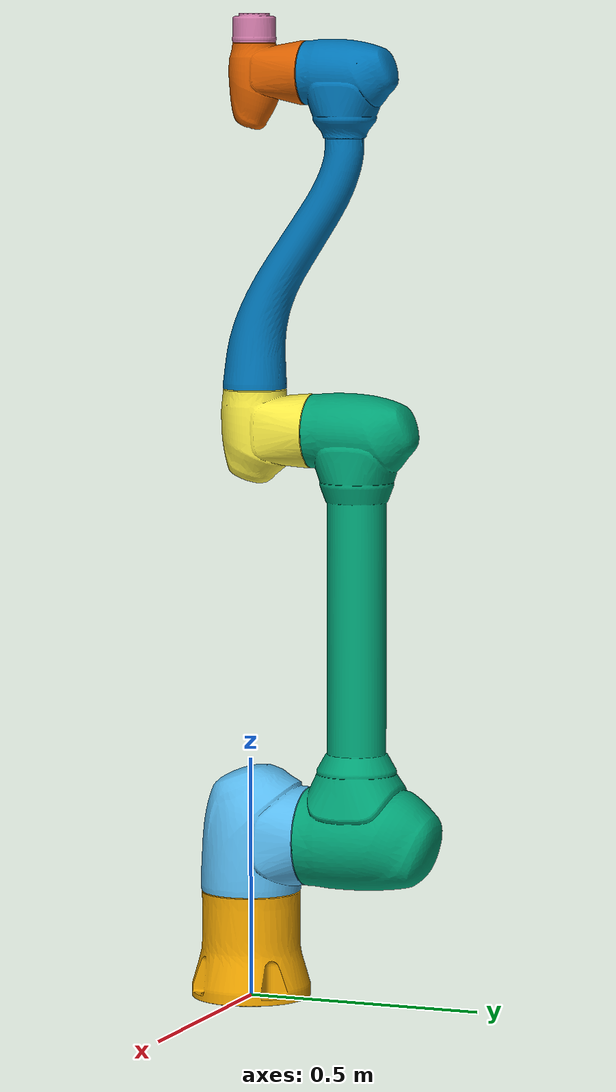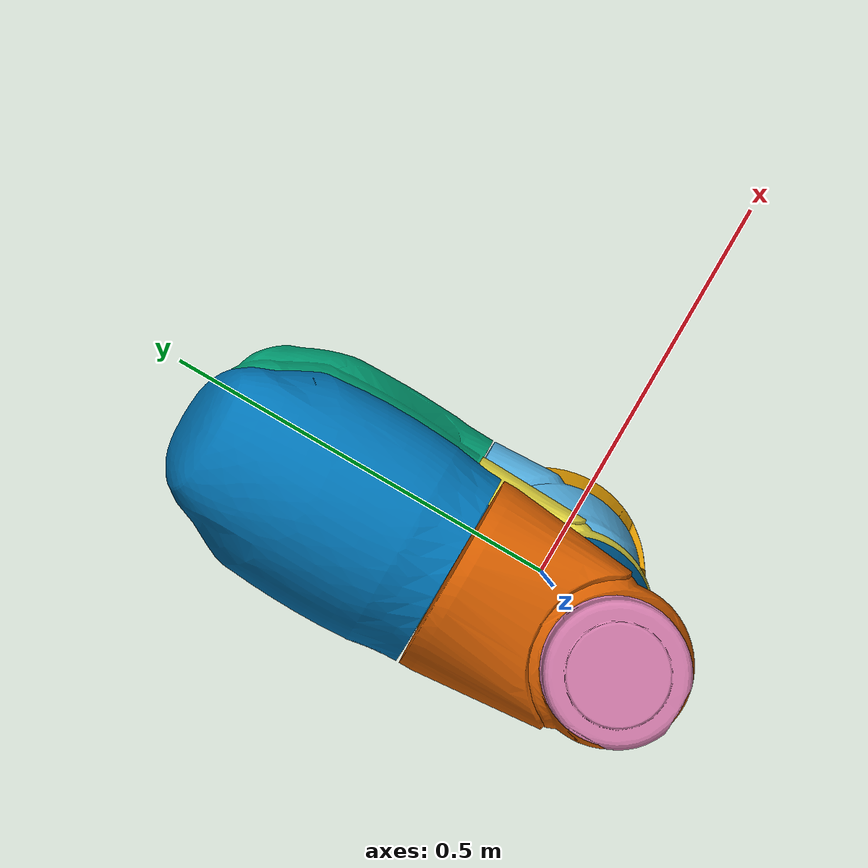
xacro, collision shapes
<?xml version="1.0"?>
<robot xmlns:xacro="http://www.ros.org/wiki/xacro" name="h2017" >

  <xacro:arg name="color"   default="blue"/>
  <xacro:arg name="gripper" default="none"/>

  <xacro:property name="cr" value="$(arg color)"/>
  <xacro:property name="gr" value="$(arg gripper)"/>

  <xacro:if value="${cr == 'white'}">
     <xacro:include filename="$(find doosan_lift_description)/urdf/macro.h2017.white.xacro" />
  </xacro:if>
  <xacro:if value="${cr == 'blue'}">
     <xacro:include filename="$(find doosan_lift_description)/urdf/macro.h2017.blue.xacro" />
  </xacro:if>
  <xacro:h2017/>

  <link name="world" />

  <!-- World fixed joint-->
  <joint name="world_fixed" type="fixed">
    <origin xyz="0 0 0" rpy="0 0 0"/>
    <parent link="world"/>
    <child link="base_0"/>
  </joint>

</robot>

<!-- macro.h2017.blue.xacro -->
<robot name="h2017" xmlns:xacro="http://www.ros.org/wiki/xacro">
	<xacro:include filename="$(find dootion_description)/urdf/macro.gazebo.xacro" />
	<xacro:include filename="$(find dootion_description)/urdf/macro.transmission.xacro" />
	<xacro:include filename="$(find dootion_description)/urdf/macro.materials.xacro" />
	<xacro:macro name="h2017">
		<xacro:dsr_materials />
		<link name="base_0">
			<inertial>
				<mass value="8.537"/>
				<origin xyz="1.8e-05   -0.002377    0.095608"/>
				<inertia ixx="0.079499" ixy="2.9382e-05" ixz="1.7529e-05" iyy="0.076993"
					iyz="-0.0009938"
					izz="0.067833"/>
			</inertial>
			<visual>
				<origin rpy="0 0 0" xyz="0 0 0" />
				<geometry>
					<mesh filename="package://dootion_description/meshes/h2017_blue/H2017_0_0.dae" scale="0.001 0.001 0.001" />
				</geometry>
			</visual>
			<collision>
				<origin rpy="0 0 0" xyz="0 0 0" />
				<geometry>
					<mesh filename="package://dootion_description/meshes/doosan_collision/H2017_0_0.stl" scale="1 1 1" />
				</geometry>
			</collision>
		</link>
		<!-- joint 1 -->
		<joint name="joint1" type="revolute">
			<parent link="base_0" />
			<child link="link1" />
			<origin rpy="0 0 0" xyz="0 0 0.3443" />
			<axis xyz="0 0 1" />
			<limit effort="372" lower="-6.2832" upper="6.2832" velocity="1.7453"/>
			<dynamics friction="0" />
		</joint>
		<link name="link1">
			<inertial>
				<mass value="20.253"/>
				<origin xyz="-5e-05     0.11854   -0.059979"/>
				<inertia ixx="0.5323" ixy="-6.2817e-05" ixz="-7.5664e-06" iyy="0.2807" iyz="-0.14899"
					izz="0.34857"/>
			</inertial>
			<visual>
				<origin rpy="0 0 0" xyz="0 0 0" />
				<geometry>
					<mesh filename="package://dootion_description/meshes/h2017_blue/H2017_1_0.dae" scale="0.001 0.001 0.001" />
				</geometry>
			</visual>
            <collision>
                <geometry>
					<mesh filename="package://dootion_description/meshes/doosan_collision/H2017_1_0.stl" scale="1 1 1" />
                </geometry>
            </collision>
		</link>
		<!-- joint2 -->
		<joint name="joint2" type="revolute">
			<parent link="link1" />
			<child link="link2" />
			<origin rpy="0 -1.571 -1.571" xyz="0 0.0099 0" />
			<axis xyz="0 0 1" />
			<limit effort="372" lower="-2.1817" upper="2.1817" velocity="1.3963"/>
			<dynamics friction="0" />
		</joint>
		<link name="link2">
			<inertial>
				<mass value="28.536"/>
				<origin xyz="0.38055    -1.7e-05     0.22527"/>
				<inertia ixx="0.15388" ixy="-0.00022213" ixz="0.11801" iyy="3.0424" iyz="-5.3325e-05"
					izz="3.0015"/>
			</inertial>
            <visual>
				<origin rpy="0 0 0" xyz="0 0 0" />
				<geometry>
					<mesh filename="package://dootion_description/meshes/h2017_blue/H2017_2_0.dae" scale="0.001 0.001 0.001" />
				</geometry>
			</visual>
			<visual>
				<origin rpy="0 0 0" xyz="0 0 0" />
				<geometry>
					<mesh filename="package://dootion_description/meshes/h2017_blue/H2017_2_1.dae" scale="0.001 0.001 0.001" />
				</geometry>
			</visual>
			<visual>
				<origin rpy="0 0 0" xyz="0 0 0" />
				<geometry>
					<mesh filename="package://dootion_description/meshes/h2017_blue/H2017_2_2.dae" scale="0.001 0.001 0.001" />
				</geometry>
			</visual>
			<collision>
				<origin rpy="0 0 0" xyz="0 0 0" />
				<geometry>
					<mesh filename="package://dootion_description/meshes/doosan_collision/H2017_2_0.STL" scale="1 1 1" />
				</geometry>
			</collision>
		</link>
		<!-- joint3 -->
		<joint name="joint3" type="revolute">
			<parent link="link2" />
			<child link="link3" />
			<origin rpy="0 0 1.571" xyz="0.845 0 0" />
			<axis xyz="0 0 1" />
			<limit effort="372" lower="-2.7925" upper="2.7925" velocity="1.7453"/>
			<dynamics friction="0" />
		</joint>
		<link name="link3">
			<inertial>
				<mass value="6.421"/>
				<origin xyz="-5.9e-05   -0.008325    0.049527"/>
				<inertia ixx="0.04463" ixy="3.0207e-05" ixz="-1.0987e-05" iyy="0.041031"
					iyz="-0.0029929"
					izz="0.028983"/>
			</inertial>
            <visual>
				<origin rpy="0 0 0" xyz="0 0 0" />
				<geometry>
					<mesh filename="package://dootion_description/meshes/h2017_blue/H2017_3_0.dae" scale="0.001 0.001 0.001" />
				</geometry>
			</visual>
			<collision>
				<origin rpy="0 0 0" xyz="0 0 0" />
				<geometry>
					<mesh filename="package://dootion_description/meshes/doosan_collision/H2017_3_0.stl" scale="1 1 1" />
				</geometry>
			</collision>
		</link>
		<!-- joint4 -->
		<joint name="joint4" type="revolute">
			<parent link="link3" />
			<child link="link4" />
			<origin rpy="1.571 0 0" xyz="0 -0.734 0" />
			<axis xyz="0 0 1" />
			<limit effort="163" lower="-6.2832" upper="6.2832" velocity="3.1416"/>
			<dynamics friction="0" />
		</joint>
		<link name="link4">
			<inertial>
				<mass value="7.59"/>
				<origin xyz="7.7e-05     0.12896    -0.22056"/>
				<inertia ixx="0.60329" ixy="-6.8213e-05" ixz="-0.00013439" iyy="0.54966" iyz="-0.159"
					izz="0.078126"/>
			</inertial>
			<visual>
				<origin rpy="0 0 0" xyz="0 0 0" />
				<geometry>
					<mesh filename="package://dootion_description/meshes/h2017_blue/H2017_4_0.dae" scale="0.001 0.001 0.001" />
				</geometry>
			</visual>
			<visual>
				<origin rpy="0 0 0" xyz="0 0 0" />
				<geometry>
					<mesh filename="package://dootion_description/meshes/h2017_blue/H2017_4_1.dae" scale="0.001 0.001 0.001" />
				</geometry>
			</visual>
			<collision>
				<origin rpy="0 0 0" xyz="0 0 0" />
				<geometry>
					<mesh filename="package://dootion_description/meshes/doosan_collision/H2017_4_0.stl" scale="1 1 1" />
				</geometry>
			</collision>
		</link>
		<!-- joint5 -->
		<joint name="joint5" type="revolute">
			<parent link="link4" />
			<child link="link5" />
			<origin rpy="-1.571 0 0" xyz="0 0 0" />
			<axis xyz="0 0 1" />
			<limit effort="96" lower="-6.2832" upper="6.2832" velocity="3.1416"/>
			<dynamics friction="0" />
		</joint>
		<link name="link5">
			<inertial>
				<mass value="4.099"/>
				<origin xyz="-6.1e-05   -0.000589    0.048812"/>
				<inertia ixx="0.021303" ixy="2.545e-05" ixz="-4.3439e-06" iyy="0.023894"
					iyz="6.0426e-05"
					izz="0.014587"/>
			</inertial>
			<visual>
				<origin rpy="0 0 0" xyz="0 0 0" />
				<geometry>
					<mesh filename="package://dootion_description/meshes/h2017_blue/H2017_5_0.dae" scale="0.001 0.001 0.001" />
				</geometry>
			</visual>
			<collision>
				<origin rpy="0 0 0" xyz="0 0 0" />
				<geometry>
					<mesh filename="package://dootion_description/meshes/doosan_collision/H2017_5_0.stl" scale="1 1 1" />
				</geometry>
			</collision>
		</link>
		<!-- joint6 -->
		<joint name="joint6" type="revolute">
			<parent link="link5" />
			<child link="link6" />
			<origin rpy="1.571 0 0" xyz="0 -0.121 0" />
			<axis xyz="0 0 1" />
			<limit effort="50" lower="-6.2832" upper="6.2832" velocity="3.927"/>
			<dynamics friction="0" />
		</joint>
		<link name="link6">
			<inertial>
				<mass value="0.897"/>
				<origin xyz="-3.3e-05     3.6e-05   -0.049443"/>
				<inertia ixx="0.0086582" ixy="7.8198e-06" ixz="2.2495e-06" iyy="0.0068184"
					iyz="5.6115e-06"
					izz="0.0080729"/>
			</inertial>
			<visual>
				<origin rpy="0 0 0" xyz="0 0 0" />
				<geometry>
					<mesh filename="package://dootion_description/meshes/h2017_blue/H2017_6_0.dae" scale="0.001 0.001 0.001" />
				</geometry>
			</visual>
			<collision>
				<origin rpy="0 0 0" xyz="0 0 0" />
				<geometry>
					<mesh filename="package://dootion_description/meshes/doosan_collision/H2017_6_0.stl" scale="1 1 1" />
				</geometry>
			</collision>
		</link>
		<xacro:dsr_transmission />
	</xacro:macro>
</robot>
